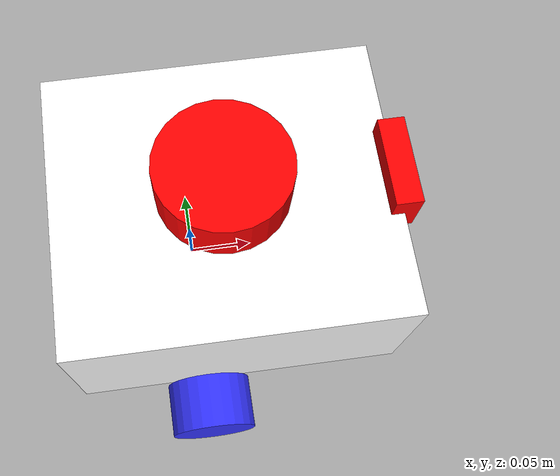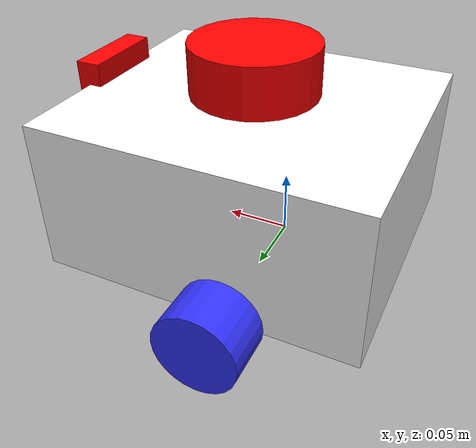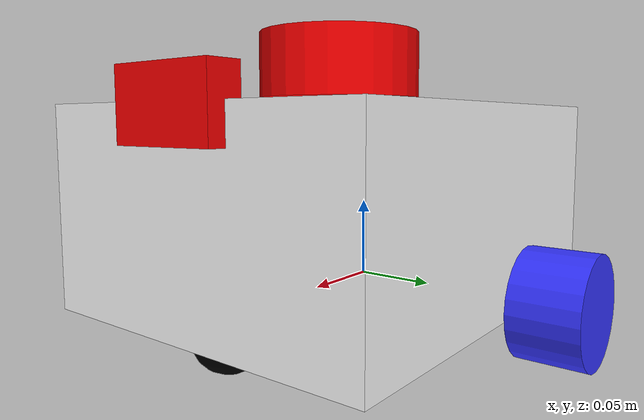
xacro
<?xml version="1.0"?>
<robot xmlns:xacro="http://www.ros.org/wiki/xacro"  name="robot">

  <xacro:arg name="use_ros2_control" default="true"/>
  <xacro:arg name="sim_mode" default="false"/>

  <xacro:include filename="robot_core.xacro" />

  <xacro:if value="$(arg use_ros2_control)">
    <xacro:include filename="ros2_control.xacro" />
  </xacro:if>
  <xacro:unless value="$(arg use_ros2_control)">
    <xacro:include filename="gazebo_control.xacro" />
  </xacro:unless>

</robot>

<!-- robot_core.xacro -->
<robot xmlns:xacro="http://www.ros.org/wiki/xacro">

  <xacro:include filename="inertial_macros.xacro"/>

  <material name="white">
    <color rgba="1 1 1 1"/>
  </material>

  <material name="orange">
    <color rgba="1 0.3 0.1 1"/>
  </material>

  <material name="blue">
    <color rgba="0.2 0.2 1 1"/>
  </material>

  <material name="black">
    <color rgba="0 0 0 1"/>
  </material>

  <material name="red">
    <color rgba="1 0 0 1"/>
  </material>

  <!-- Base link -->

  <link name="base_link">

  </link>

  <!-- Base_Footprint Link -->
  <joint name="base_footprint_joint" type="fixed">
    <origin xyz="0 0 0"/>
    <parent link="base_link"/>
    <child link="base_footprint"/>
  </joint>

  <link name="base_footprint">
  </link>

  <!-- Chassis Link -->

  <joint name="chassis_joint" type="fixed">
    <origin xyz="-0.1 0 -0.00875"/>
    <parent link="base_link"/>
    <child link="chassis"/>
    </joint>

  <link name="chassis">
    <visual>
      <origin xyz="0.1275 0 0.061"/>
      <geometry>
        <box size="0.255 0.22 0.122"/>
      </geometry>
      <material name="white"/>
      </visual>
      <collision>
        <origin xyz="0.1275 0 0.061"/>
        <geometry>
          <box size="0.255 0.22 0.122"/>
        </geometry>
      </collision>
      <xacro:inertial_box mass="0.5" x="0.255" y="0.22" z="0.122">
        <origin xyz="0.1275 0 0.061"/>
      </xacro:inertial_box>

  </link>

  <gazebo reference="chassis">
    <material>Gazebo/White</material>
  </gazebo>

  <!-- Left Wheel Link -->

  <joint name="left_wheel_joint" type="continuous">
    <origin xyz="0 0.135 0" rpy="-${pi/2} 0 0"/>
    <parent link="base_link"/>
    <child link="left_wheel"/>
    <axis xyz="0 0 1"/>
  </joint>

  <link name="left_wheel">
    <visual>
      <geometry>
        <cylinder radius="0.0325" length="0.04"/>
      </geometry>
      <material name="blue"/>
    </visual>
    <collision>
      <geometry>
        <sphere radius="0.0325"/>
      </geometry>
    </collision>
    <xacro:inertial_cylinder mass="0.1" length="0.04" radius="0.0325">
      <origin xyz="0 0 0"/>
    </xacro:inertial_cylinder>
  </link>

  <gazebo reference="left_wheel">
    <material>Gazebo/Blue</material>
  </gazebo>

  <!-- Right Wheel Link -->

  <joint name="right_wheel_joint" type="continuous">
    <origin xyz="0 -0.135 0" rpy="${pi/2} 0 0"/>
    <parent link="base_link"/>
    <child link="right_wheel"/>
    <axis xyz="0 0 -1"/>
  </joint>

  <link name="right_wheel">
    <visual>
      <geometry>
        <cylinder radius="0.0325" length="0.04"/>
      </geometry>
      <material name="blue"/>
    </visual>
    <collision>
      <geometry>
        <sphere radius="0.0325"/>
      </geometry>
    </collision>
    <xacro:inertial_cylinder mass="0.1" length="0.04" radius="0.0325">
      <origin xyz="0 0 0"/>
    </xacro:inertial_cylinder>
  </link>

  <gazebo reference="right_wheel">
    <material>Gazebo/Blue</material>
  </gazebo>

  <!-- Caster Wheel Link -->

  <joint name="caster_wheel_joint" type="fixed">
    <origin xyz="0.223 0 0" rpy="0 0 0"/>
    <parent link="chassis"/>
    <child link="caster_wheel"/>
  </joint>

  <link name="caster_wheel">
    <visual>
      <geometry>
        <sphere radius="0.022"/>
      </geometry>
      <material name="black"/>
    </visual>
    <collision>
      <geometry>
        <sphere radius="0.022"/>
      </geometry>
    </collision>
    <xacro:inertial_sphere mass="0.01" radius="0.022">
      <origin xyz="0 0 0"/>
    </xacro:inertial_sphere>
  </link>

  <gazebo reference="caster_wheel">
    <material>Gazebo/Black</material>
    <mu1 value="0.001"/>
    <mu2 value="0.001"/>
  </gazebo>

  <xacro:include filename="lidar.xacro"/>
  <xacro:include filename="camera.xacro"/>

</robot>

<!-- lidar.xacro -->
<robot xmlns:xacro="http://www.ros.org/wiki/xacro">

  <joint name="laser_joint" type="fixed">
    <origin xyz="0.1275 0 0.147" rpy="0 0 0"/>
    <parent link="chassis"/>
    <child link="laser_frame"/>
  </joint>

  <link name="laser_frame">
    <visual>
      <geometry>
        <cylinder radius="0.05" length="0.04"/>
      </geometry>
      <material name="red"/>
    </visual>
    <collision>
      <geometry>
        <cylinder radius="0.05" length="0.04"/>
      </geometry>
    </collision>
    <xacro:inertial_cylinder mass="0.1" length="0.04" radius="0.05">
      <origin xyz="0 0 0"/>
    </xacro:inertial_cylinder>
  </link>

  <gazebo reference="laser_frame">
    <material>Gazebo/Red</material>

      <sensor name="laser" type="ray">
        <pose> 0 0 0 0 0 0 </pose>
        <visualize>true</visualize>
        <update_rate>10</update_rate>
        <ray>
          <scan>
            <horizontal>
              <samples>360</samples>
              <min_angle>-3.14</min_angle>
              <max_angle>3.14</max_angle>
            </horizontal>
          </scan>
          <range>
            <min>0.3</min>
            <max>12</max>
          </range>
        </ray>
        <plugin name="laser_controller" filename="libgazebo_ros_ray_sensor.so">
          <ros>
            <argument>~/out:=scan</argument>
          </ros>
          <output_type>sensor_msgs/LaserScan</output_type>
          <frame_name>laser_frame</frame_name>
        </plugin>
      </sensor>
    </gazebo>

</robot>

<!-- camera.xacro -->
<robot xmlns:xacro="http://www.ros.org/wiki/xacro">

  <joint name="damera_joint" type="fixed">
    <origin xyz="0.255 0 0.12" rpy="0 0 0"/>
    <parent link="chassis"/>
    <child link="camera_link"/>
  </joint>

  <link name="camera_link">
    <visual>
      <geometry>
        <box size="0.02 0.068 0.04"/>
      </geometry>
      <material name="red"/>
    </visual>
    <collision>
      <geometry>
        <box size="0.02 0.068 0.04"/>
      </geometry>
    </collision>
  </link>

  <joint name="camera_optical_joint" type="fixed">
    <origin xyz="0 0 0" rpy="${-pi/2} 0 ${-pi/2}"/>
    <parent link="camera_link"/>
    <child link="camera_link_optical"/>
  </joint>

  <link name="camera_link_optical"></link>

  <gazebo reference="camera_link">
    <material>Gazebo/Red</material>

    <sensor name="camera" type="camera">
      <pose> 0 0 0 0 0 0 </pose>
      <visualize>true</visualize>
      <update_rate>10</update_rate>
      <camera>
        <horizontal_fov>1.36136</horizontal_fov>
        <image>
          <width>640</width>
          <height>480</height>
          <format>R8G8B8</format>
        </image>
        <clip>
          <near>0.05</near>
          <far>8.0</far>
        </clip>
        </camera>
        <plugin name="camera_controller" filename="libgazebo_ros_camera.so">
          <frame_name>camera_link_optical</frame_name>
        </plugin>
      </sensor>
    </gazebo>

</robot>
